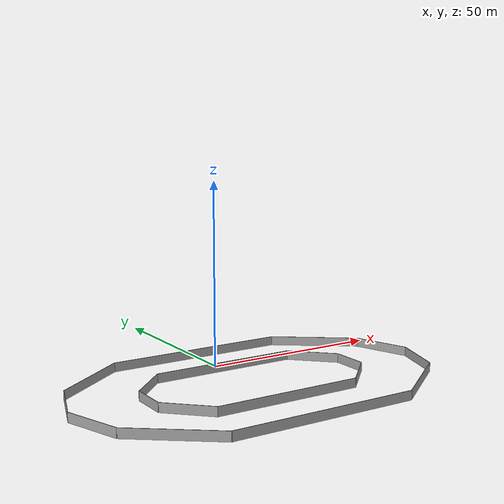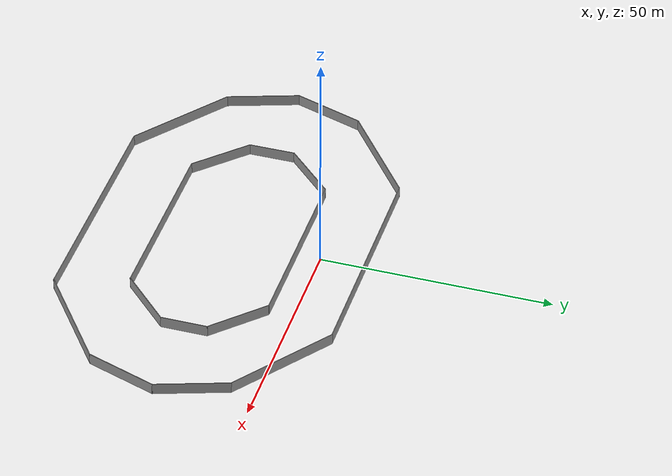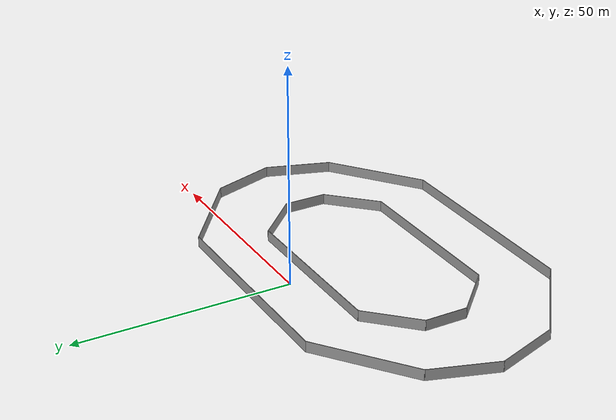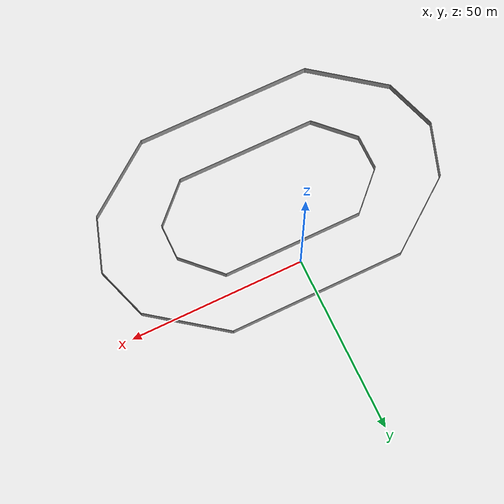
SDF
<?xml version='1.0'?>
<sdf version='1.6'>
  <model name='Circuit_TIM'>
    <pose frame=''>0 -20.0001 0 0 -0 0</pose>
    <link name='Wall_16'>
      <collision name='Wall_16_Collision'>
        <geometry>
          <box>
            <size>50.5794 0.15 2.5</size>
          </box>
        </geometry>
        <pose frame=''>0 0 1.25 0 -0 0</pose>
      </collision>
      <visual name='Wall_16_Visual'>
        <pose frame=''>0 0 1.25 0 -0 0</pose>
        <geometry>
          <box>
            <size>50.5794 0.15 2.5</size>
          </box>
        </geometry>
        <material>
          <script>
            <uri>file://media/materials/scripts/gazebo.material</uri>
            <name>Gazebo/Grey</name>
          </script>
          <ambient>1 1 1 1</ambient>
        </material>
        <meta>
          <layer>0</layer>
        </meta>
      </visual>
      <pose frame=''>-0.214689 -29.9999 0 0 -0 0</pose>
    </link>
    <link name='Wall_18'>
      <collision name='Wall_18_Collision'>
        <geometry>
          <box>
            <size>25.15 0.15 2.5</size>
          </box>
        </geometry>
        <pose frame=''>0 0 1.25 0 -0 0</pose>
      </collision>
      <visual name='Wall_18_Visual'>
        <pose frame=''>0 0 1.25 0 -0 0</pose>
        <geometry>
          <box>
            <size>25.15 0.15 2.5</size>
          </box>
        </geometry>
        <material>
          <script>
            <uri>file://media/materials/scripts/gazebo.material</uri>
            <name>Gazebo/Grey</name>
          </script>
          <ambient>1 1 1 1</ambient>
        </material>
        <meta>
          <layer>0</layer>
        </meta>
      </visual>
      <pose frame=''>35 -22.4999 0 0 -0 0.643501</pose>
    </link>
    <link name='Wall_19'>
      <collision name='Wall_19_Collision'>
        <geometry>
          <box>
            <size>15.9614 0.15 2.5</size>
          </box>
        </geometry>
        <pose frame=''>0 0 1.25 0 -0 0</pose>
      </collision>
      <visual name='Wall_19_Visual'>
        <pose frame=''>0 0 1.25 0 -0 0</pose>
        <geometry>
          <box>
            <size>15.9614 0.15 2.5</size>
          </box>
        </geometry>
        <material>
          <script>
            <uri>file://media/materials/scripts/gazebo.material</uri>
            <name>Gazebo/Grey</name>
          </script>
          <ambient>1 1 1 1</ambient>
        </material>
        <meta>
          <layer>0</layer>
        </meta>
      </visual>
      <pose frame=''>47.5 -7.4999 0 0 -0 1.24905</pose>
    </link>
    <link name='Wall_20'>
      <collision name='Wall_20_Collision'>
        <geometry>
          <box>
            <size>15.9614 0.15 2.5</size>
          </box>
        </geometry>
        <pose frame=''>0 0 1.25 0 -0 0</pose>
      </collision>
      <visual name='Wall_20_Visual'>
        <pose frame=''>0 0 1.25 0 -0 0</pose>
        <geometry>
          <box>
            <size>15.9614 0.15 2.5</size>
          </box>
        </geometry>
        <material>
          <script>
            <uri>file://media/materials/scripts/gazebo.material</uri>
            <name>Gazebo/Grey</name>
          </script>
          <ambient>1 1 1 1</ambient>
        </material>
        <meta>
          <layer>0</layer>
        </meta>
      </visual>
      <pose frame=''>47.5 7.5001 0 0 -0 1.89255</pose>
    </link>
    <link name='Wall_23'>
      <collision name='Wall_23_Collision'>
        <geometry>
          <box>
            <size>25.15 0.15 2.5</size>
          </box>
        </geometry>
        <pose frame=''>0 0 1.25 0 -0 0</pose>
      </collision>
      <visual name='Wall_23_Visual'>
        <pose frame=''>0 0 1.25 0 -0 0</pose>
        <geometry>
          <box>
            <size>25.15 0.15 2.5</size>
          </box>
        </geometry>
        <material>
          <script>
            <uri>file://media/materials/scripts/gazebo.material</uri>
            <name>Gazebo/Grey</name>
          </script>
          <ambient>1 1 1 1</ambient>
        </material>
        <meta>
          <layer>0</layer>
        </meta>
      </visual>
      <pose frame=''>35 22.5001 0 0 -0 2.49809</pose>
    </link>
    <link name='Wall_24'>
      <collision name='Wall_24_Collision'>
        <geometry>
          <box>
            <size>50.15 0.15 2.5</size>
          </box>
        </geometry>
        <pose frame=''>0 0 1.25 0 -0 0</pose>
      </collision>
      <visual name='Wall_24_Visual'>
        <pose frame=''>0 0 1.25 0 -0 0</pose>
        <geometry>
          <box>
            <size>50.15 0.15 2.5</size>
          </box>
        </geometry>
        <material>
          <script>
            <uri>file://media/materials/scripts/gazebo.material</uri>
            <name>Gazebo/Grey</name>
          </script>
          <ambient>1 1 1 1</ambient>
        </material>
        <meta>
          <layer>0</layer>
        </meta>
      </visual>
      <pose frame=''>0 30.0001 0 0 -0 3.14159</pose>
    </link>
    <link name='Wall_25'>
      <collision name='Wall_25_Collision'>
        <geometry>
          <box>
            <size>25.15 0.15 2.5</size>
          </box>
        </geometry>
        <pose frame=''>0 0 1.25 0 -0 0</pose>
      </collision>
      <visual name='Wall_25_Visual'>
        <pose frame=''>0 0 1.25 0 -0 0</pose>
        <geometry>
          <box>
            <size>25.15 0.15 2.5</size>
          </box>
        </geometry>
        <material>
          <script>
            <uri>file://media/materials/scripts/gazebo.material</uri>
            <name>Gazebo/Grey</name>
          </script>
          <ambient>1 1 1 1</ambient>
        </material>
        <meta>
          <layer>0</layer>
        </meta>
      </visual>
      <pose frame=''>-35 22.5001 0 0 -0 -2.49809</pose>
    </link>
    <link name='Wall_26'>
      <collision name='Wall_26_Collision'>
        <geometry>
          <box>
            <size>15.9614 0.15 2.5</size>
          </box>
        </geometry>
        <pose frame=''>0 0 1.25 0 -0 0</pose>
      </collision>
      <visual name='Wall_26_Visual'>
        <pose frame=''>0 0 1.25 0 -0 0</pose>
        <geometry>
          <box>
            <size>15.9614 0.15 2.5</size>
          </box>
        </geometry>
        <material>
          <script>
            <uri>file://media/materials/scripts/gazebo.material</uri>
            <name>Gazebo/Grey</name>
          </script>
          <ambient>1 1 1 1</ambient>
        </material>
        <meta>
          <layer>0</layer>
        </meta>
      </visual>
      <pose frame=''>-47.5 7.5001 0 0 -0 -1.89255</pose>
    </link>
    <link name='Wall_27'>
      <collision name='Wall_27_Collision'>
        <geometry>
          <box>
            <size>15.9614 0.15 2.5</size>
          </box>
        </geometry>
        <pose frame=''>0 0 1.25 0 -0 0</pose>
      </collision>
      <visual name='Wall_27_Visual'>
        <pose frame=''>0 0 1.25 0 -0 0</pose>
        <geometry>
          <box>
            <size>15.9614 0.15 2.5</size>
          </box>
        </geometry>
        <material>
          <script>
            <uri>file://media/materials/scripts/gazebo.material</uri>
            <name>Gazebo/Grey</name>
          </script>
          <ambient>1 1 1 1</ambient>
        </material>
        <meta>
          <layer>0</layer>
        </meta>
      </visual>
      <pose frame=''>-47.5 -7.4999 0 0 -0 -1.24905</pose>
    </link>
    <link name='Wall_28'>
      <collision name='Wall_28_Collision'>
        <geometry>
          <box>
            <size>24.6944 0.15 2.5</size>
          </box>
        </geometry>
        <pose frame=''>0 0 1.25 0 -0 0</pose>
      </collision>
      <visual name='Wall_28_Visual'>
        <pose frame=''>0 0 1.25 0 -0 0</pose>
        <geometry>
          <box>
            <size>24.6944 0.15 2.5</size>
          </box>
        </geometry>
        <material>
          <script>
            <uri>file://media/materials/scripts/gazebo.material</uri>
            <name>Gazebo/Grey</name>
          </script>
          <ambient>1 1 1 1</ambient>
        </material>
        <meta>
          <layer>0</layer>
        </meta>
      </visual>
      <pose frame=''>-35.2863 -22.4999 0 0 -0 -0.657497</pose>
    </link>
    <link name='Wall_50'>
      <collision name='Wall_50_Collision'>
        <geometry>
          <box>
            <size>40.15 0.15 2.5</size>
          </box>
        </geometry>
        <pose frame=''>0 0 1.25 0 -0 0</pose>
      </collision>
      <visual name='Wall_50_Visual'>
        <pose frame=''>0 0 1.25 0 -0 0</pose>
        <geometry>
          <box>
            <size>40.15 0.15 2.5</size>
          </box>
        </geometry>
        <material>
          <script>
            <uri>file://media/materials/scripts/gazebo.material</uri>
            <name>Gazebo/Grey</name>
          </script>
          <ambient>1 1 1 1</ambient>
        </material>
        <meta>
          <layer>0</layer>
        </meta>
      </visual>
      <pose frame=''>0 15.0001 0 0 -0 0</pose>
    </link>
    <link name='Wall_51'>
      <collision name='Wall_51_Collision'>
        <geometry>
          <box>
            <size>14.2921 0.15 2.5</size>
          </box>
        </geometry>
        <pose frame=''>0 0 1.25 0 -0 0</pose>
      </collision>
      <visual name='Wall_51_Visual'>
        <pose frame=''>0 0 1.25 0 -0 0</pose>
        <geometry>
          <box>
            <size>14.2921 0.15 2.5</size>
          </box>
        </geometry>
        <material>
          <script>
            <uri>file://media/materials/scripts/gazebo.material</uri>
            <name>Gazebo/Grey</name>
          </script>
          <ambient>1 1 1 1</ambient>
        </material>
        <meta>
          <layer>0</layer>
        </meta>
      </visual>
      <pose frame=''>25 10.0001 0 0 -0 -0.785398</pose>
    </link>
    <link name='Wall_52'>
      <collision name='Wall_52_Collision'>
        <geometry>
          <box>
            <size>10.15 0.15 2.5</size>
          </box>
        </geometry>
        <pose frame=''>0 0 1.25 0 -0 0</pose>
      </collision>
      <visual name='Wall_52_Visual'>
        <pose frame=''>0 0 1.25 0 -0 0</pose>
        <geometry>
          <box>
            <size>10.15 0.15 2.5</size>
          </box>
        </geometry>
        <material>
          <script>
            <uri>file://media/materials/scripts/gazebo.material</uri>
            <name>Gazebo/Grey</name>
          </script>
          <ambient>1 1 1 1</ambient>
        </material>
        <meta>
          <layer>0</layer>
        </meta>
      </visual>
      <pose frame=''>30 9.9e-05 0 0 -0 -1.5708</pose>
    </link>
    <link name='Wall_53'>
      <collision name='Wall_53_Collision'>
        <geometry>
          <box>
            <size>14.2921 0.15 2.5</size>
          </box>
        </geometry>
        <pose frame=''>0 0 1.25 0 -0 0</pose>
      </collision>
      <visual name='Wall_53_Visual'>
        <pose frame=''>0 0 1.25 0 -0 0</pose>
        <geometry>
          <box>
            <size>14.2921 0.15 2.5</size>
          </box>
        </geometry>
        <material>
          <script>
            <uri>file://media/materials/scripts/gazebo.material</uri>
            <name>Gazebo/Grey</name>
          </script>
          <ambient>1 1 1 1</ambient>
        </material>
        <meta>
          <layer>0</layer>
        </meta>
      </visual>
      <pose frame=''>25 -9.9999 0 0 -0 -2.35619</pose>
    </link>
    <link name='Wall_54'>
      <collision name='Wall_54_Collision'>
        <geometry>
          <box>
            <size>40.15 0.15 2.5</size>
          </box>
        </geometry>
        <pose frame=''>0 0 1.25 0 -0 0</pose>
      </collision>
      <visual name='Wall_54_Visual'>
        <pose frame=''>0 0 1.25 0 -0 0</pose>
        <geometry>
          <box>
            <size>40.15 0.15 2.5</size>
          </box>
        </geometry>
        <material>
          <script>
            <uri>file://media/materials/scripts/gazebo.material</uri>
            <name>Gazebo/Grey</name>
          </script>
          <ambient>1 1 1 1</ambient>
        </material>
        <meta>
          <layer>0</layer>
        </meta>
      </visual>
      <pose frame=''>0 -14.9999 0 0 -0 3.14159</pose>
    </link>
    <link name='Wall_59'>
      <collision name='Wall_59_Collision'>
        <geometry>
          <box>
            <size>14.2921 0.15 2.5</size>
          </box>
        </geometry>
        <pose frame=''>0 0 1.25 0 -0 0</pose>
      </collision>
      <visual name='Wall_59_Visual'>
        <pose frame=''>0 0 1.25 0 -0 0</pose>
        <geometry>
          <box>
            <size>14.2921 0.15 2.5</size>
          </box>
        </geometry>
        <material>
          <script>
            <uri>file://media/materials/scripts/gazebo.material</uri>
            <name>Gazebo/Grey</name>
          </script>
          <ambient>1 1 1 1</ambient>
        </material>
        <meta>
          <layer>0</layer>
        </meta>
      </visual>
      <pose frame=''>-25 10.0001 0 0 -0 -2.35619</pose>
    </link>
    <link name='Wall_60'>
      <collision name='Wall_60_Collision'>
        <geometry>
          <box>
            <size>10.15 0.15 2.5</size>
          </box>
        </geometry>
        <pose frame=''>0 0 1.25 0 -0 0</pose>
      </collision>
      <visual name='Wall_60_Visual'>
        <pose frame=''>0 0 1.25 0 -0 0</pose>
        <geometry>
          <box>
            <size>10.15 0.15 2.5</size>
          </box>
        </geometry>
        <material>
          <script>
            <uri>file://media/materials/scripts/gazebo.material</uri>
            <name>Gazebo/Grey</name>
          </script>
          <ambient>1 1 1 1</ambient>
        </material>
        <meta>
          <layer>0</layer>
        </meta>
      </visual>
      <pose frame=''>-30 9.9e-05 0 0 -0 -1.5708</pose>
    </link>
    <link name='Wall_61'>
      <collision name='Wall_61_Collision'>
        <geometry>
          <box>
            <size>14.2921 0.15 2.5</size>
          </box>
        </geometry>
        <pose frame=''>0 0 1.25 0 -0 0</pose>
      </collision>
      <visual name='Wall_61_Visual'>
        <pose frame=''>0 0 1.25 0 -0 0</pose>
        <geometry>
          <box>
            <size>14.2921 0.15 2.5</size>
          </box>
        </geometry>
        <material>
          <script>
            <uri>file://media/materials/scripts/gazebo.material</uri>
            <name>Gazebo/Grey</name>
          </script>
          <ambient>1 1 1 1</ambient>
        </material>
        <meta>
          <layer>0</layer>
        </meta>
      </visual>
      <pose frame=''>-25 -9.9999 0 0 -0 -0.785398</pose>
    </link>
    <static>1</static>
  </model>
</sdf>
